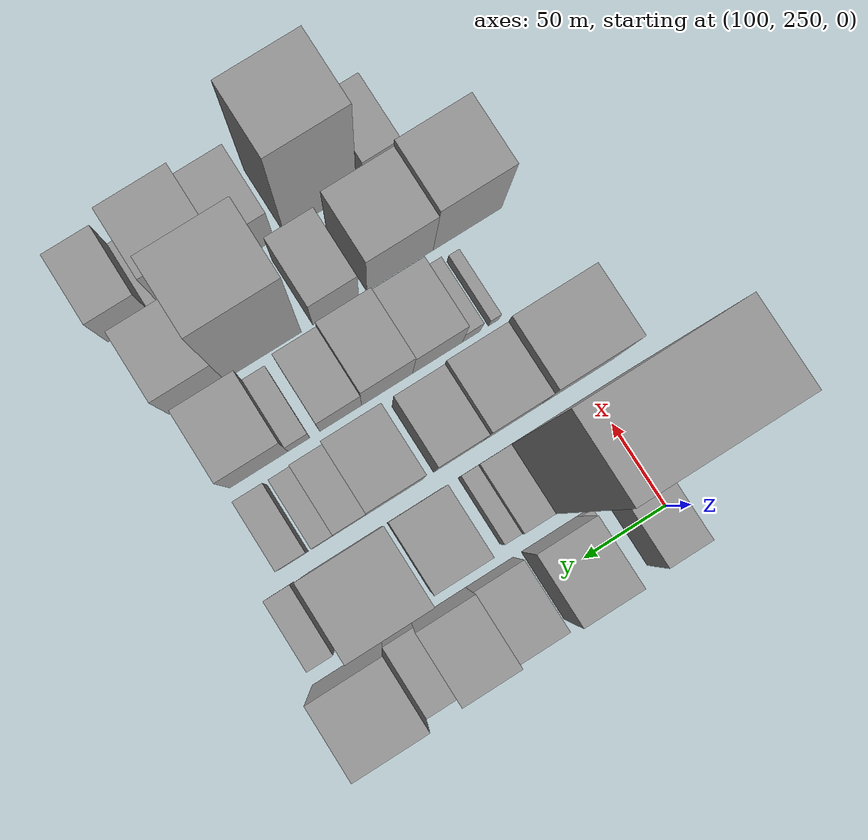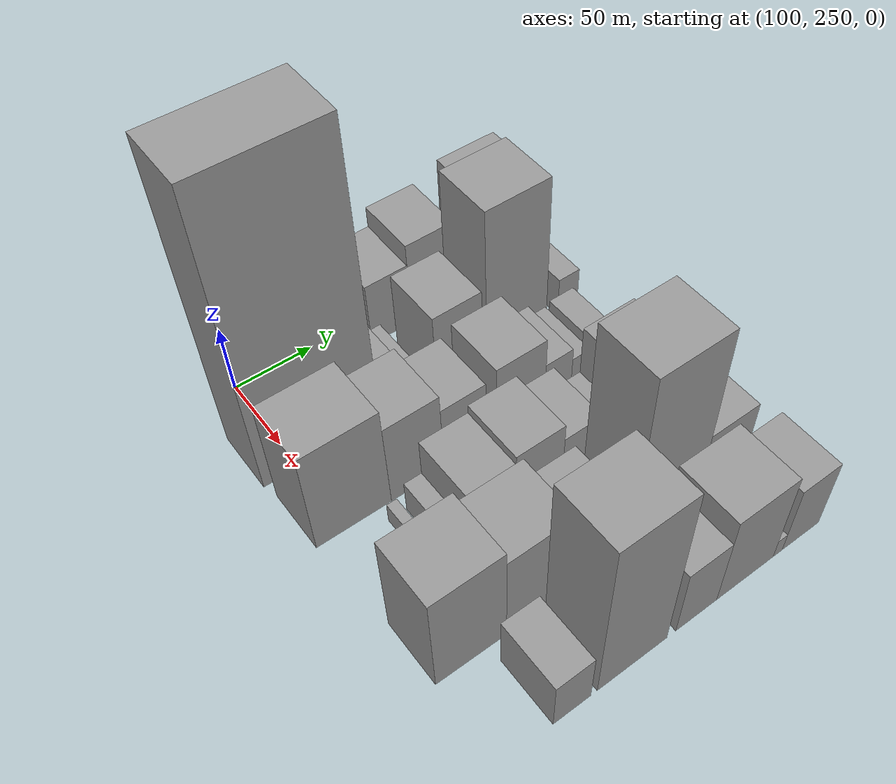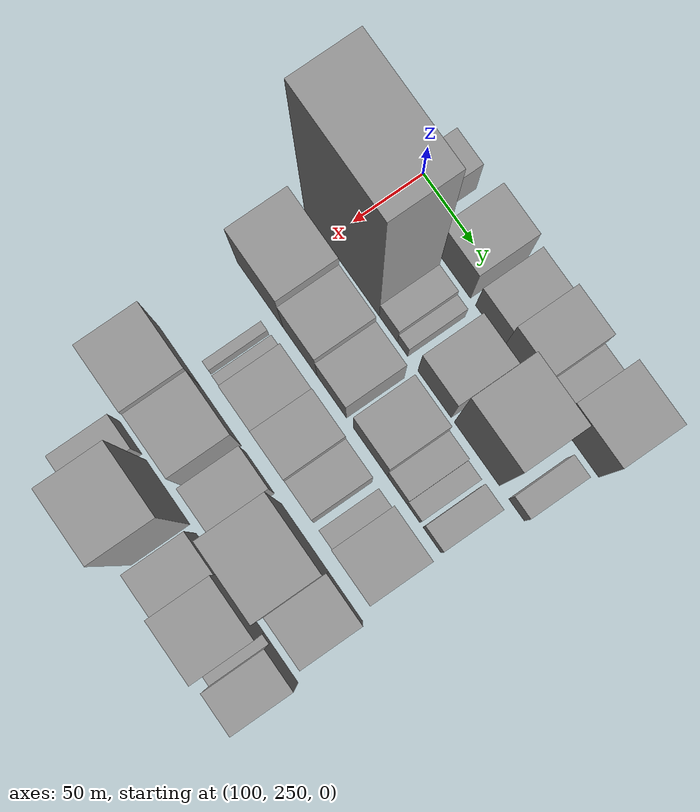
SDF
<sdf version="1.6">
 <world name="default">
  <model name="building_30">
   <static>1</static>
   <pose>100.0000 262.0798 0 0.000000 0.000000 0.000000</pose>
   <link name="link">
    <pose>0 0 24.00 0 0 0</pose>
    <collision name="collision"><geometry><box><size>40.0000 25.0170 48.0000</size></box></geometry></collision>
    <visual name="visual">
     <cast_shadows>0</cast_shadows>
     <geometry><box><size>40.0000 25.0170 48.0000</size></box></geometry>
     <material>
      <script>
       <uri>model://grey_wall/materials/scripts</uri>
       <uri>model://grey_wall/materials/textures</uri>
       <name>vrc/grey_wall</name>
      </script>
     </material>
    </visual>
   </link>
  </model>
  <model name="building_31">
   <static>1</static>
   <pose>100.0000 287.9482 0 0.000000 0.000000 0.000000</pose>
   <link name="link">
    <pose>0 0 7.50 0 0 0</pose>
    <collision name="collision"><geometry><box><size>40.0000 6.7198 15.0000</size></box></geometry></collision>
    <visual name="visual">
     <cast_shadows>0</cast_shadows>
     <geometry><box><size>40.0000 6.7198 15.0000</size></box></geometry>
     <material>
      <script>
       <uri>model://grey_wall/materials/scripts</uri>
       <uri>model://grey_wall/materials/textures</uri>
       <name>vrc/grey_wall</name>
      </script>
     </material>
    </visual>
   </link>
  </model>
  <model name="building_32">
   <static>1</static>
   <pose>100.0000 308.2810 0 0.000000 0.000000 0.000000</pose>
   <link name="link">
    <pose>0 0 30.00 0 0 0</pose>
    <collision name="collision"><geometry><box><size>40.0000 33.9458 60.0000</size></box></geometry></collision>
    <visual name="visual">
     <cast_shadows>0</cast_shadows>
     <geometry><box><size>40.0000 33.9458 60.0000</size></box></geometry>
     <material>
      <script>
       <uri>model://grey_wall/materials/scripts</uri>
       <uri>model://grey_wall/materials/textures</uri>
       <name>vrc/grey_wall</name>
      </script>
     </material>
    </visual>
   </link>
  </model>
  <model name="building_33">
   <static>1</static>
   <pose>100.0000 344.5933 0 0.000000 0.000000 0.000000</pose>
   <link name="link">
    <pose>0 0 24.00 0 0 0</pose>
    <collision name="collision"><geometry><box><size>40.0000 28.6788 48.0000</size></box></geometry></collision>
    <visual name="visual">
     <cast_shadows>0</cast_shadows>
     <geometry><box><size>40.0000 28.6788 48.0000</size></box></geometry>
     <material>
      <script>
       <uri>model://grey_wall/materials/scripts</uri>
       <uri>model://grey_wall/materials/textures</uri>
       <name>vrc/grey_wall</name>
      </script>
     </material>
    </visual>
   </link>
  </model>
  <model name="building_34">
   <static>1</static>
   <pose>100.0000 375.3645 0 0.000000 0.000000 0.000000</pose>
   <link name="link">
    <pose>0 0 31.50 0 0 0</pose>
    <collision name="collision"><geometry><box><size>40.0000 32.8637 63.0000</size></box></geometry></collision>
    <visual name="visual">
     <cast_shadows>0</cast_shadows>
     <geometry><box><size>40.0000 32.8637 63.0000</size></box></geometry>
     <material>
      <script>
       <uri>model://grey_wall/materials/scripts</uri>
       <uri>model://grey_wall/materials/textures</uri>
       <name>vrc/grey_wall</name>
      </script>
     </material>
    </visual>
   </link>
  </model>
  <model name="building_35">
   <static>1</static>
   <pose>100.0000 400.6702 0 0.000000 0.000000 0.000000</pose>
   <link name="link">
    <pose>0 0 16.50 0 0 0</pose>
    <collision name="collision"><geometry><box><size>40.0000 17.7477 33.0000</size></box></geometry></collision>
    <visual name="visual">
     <cast_shadows>0</cast_shadows>
     <geometry><box><size>40.0000 17.7477 33.0000</size></box></geometry>
     <material>
      <script>
       <uri>model://grey_wall/materials/scripts</uri>
       <uri>model://grey_wall/materials/textures</uri>
       <name>vrc/grey_wall</name>
      </script>
     </material>
    </visual>
   </link>
  </model>
  <model name="building_36">
   <static>1</static>
   <pose>100.0000 430.2554 0 0.000000 0.000000 0.000000</pose>
   <link name="link">
    <pose>0 0 36.00 0 0 0</pose>
    <collision name="collision"><geometry><box><size>40.0000 41.4226 72.0000</size></box></geometry></collision>
    <visual name="visual">
     <cast_shadows>0</cast_shadows>
     <geometry><box><size>40.0000 41.4226 72.0000</size></box></geometry>
     <material>
      <script>
       <uri>model://grey_wall/materials/scripts</uri>
       <uri>model://grey_wall/materials/textures</uri>
       <name>vrc/grey_wall</name>
      </script>
     </material>
    </visual>
   </link>
  </model>
  <model name="building_73">
   <static>1</static>
   <pose>149.0000 266.2312 0 0.000000 0.000000 0.000000</pose>
   <link name="link">
    <pose>0 0 106.50 0 0 0</pose>
    <collision name="collision"><geometry><box><size>40.0000 75.2303 213.0000</size></box></geometry></collision>
    <visual name="visual">
     <cast_shadows>0</cast_shadows>
     <geometry><box><size>40.0000 75.2303 213.0000</size></box></geometry>
     <material>
      <script>
       <uri>model://grey_wall/materials/scripts</uri>
       <uri>model://grey_wall/materials/textures</uri>
       <name>vrc/grey_wall</name>
      </script>
     </material>
    </visual>
   </link>
  </model>
  <model name="building_74">
   <static>1</static>
   <pose>149.0000 312.9829 0 0.000000 0.000000 0.000000</pose>
   <link name="link">
    <pose>0 0 16.50 0 0 0</pose>
    <collision name="collision"><geometry><box><size>40.0000 18.2730 33.0000</size></box></geometry></collision>
    <visual name="visual">
     <cast_shadows>0</cast_shadows>
     <geometry><box><size>40.0000 18.2730 33.0000</size></box></geometry>
     <material>
      <script>
       <uri>model://grey_wall/materials/scripts</uri>
       <uri>model://grey_wall/materials/textures</uri>
       <name>vrc/grey_wall</name>
      </script>
     </material>
    </visual>
   </link>
  </model>
  <model name="building_75">
   <static>1</static>
   <pose>149.0000 327.2028 0 0.000000 0.000000 0.000000</pose>
   <link name="link">
    <pose>0 0 12.00 0 0 0</pose>
    <collision name="collision"><geometry><box><size>40.0000 10.1668 24.0000</size></box></geometry></collision>
    <visual name="visual">
     <cast_shadows>0</cast_shadows>
     <geometry><box><size>40.0000 10.1668 24.0000</size></box></geometry>
     <material>
      <script>
       <uri>model://grey_wall/materials/scripts</uri>
       <uri>model://grey_wall/materials/textures</uri>
       <name>vrc/grey_wall</name>
      </script>
     </material>
    </visual>
   </link>
  </model>
  <model name="building_76">
   <static>1</static>
   <pose>149.0000 358.7865 0 0.000000 0.000000 0.000000</pose>
   <link name="link">
    <pose>0 0 28.50 0 0 0</pose>
    <collision name="collision"><geometry><box><size>40.0000 33.0005 57.0000</size></box></geometry></collision>
    <visual name="visual">
     <cast_shadows>0</cast_shadows>
     <geometry><box><size>40.0000 33.0005 57.0000</size></box></geometry>
     <material>
      <script>
       <uri>model://grey_wall/materials/scripts</uri>
       <uri>model://grey_wall/materials/textures</uri>
       <name>vrc/grey_wall</name>
      </script>
     </material>
    </visual>
   </link>
  </model>
  <model name="building_77">
   <static>1</static>
   <pose>149.0000 400.4650 0 0.000000 0.000000 0.000000</pose>
   <link name="link">
    <pose>0 0 57.00 0 0 0</pose>
    <collision name="collision"><geometry><box><size>40.0000 44.3565 114.0000</size></box></geometry></collision>
    <visual name="visual">
     <cast_shadows>0</cast_shadows>
     <geometry><box><size>40.0000 44.3565 114.0000</size></box></geometry>
     <material>
      <script>
       <uri>model://grey_wall/materials/scripts</uri>
       <uri>model://grey_wall/materials/textures</uri>
       <name>vrc/grey_wall</name>
      </script>
     </material>
    </visual>
   </link>
  </model>
  <model name="building_78">
   <static>1</static>
   <pose>149.0000 439.2201 0 0.000000 0.000000 0.000000</pose>
   <link name="link">
    <pose>0 0 15.00 0 0 0</pose>
    <collision name="collision"><geometry><box><size>40.0000 15.1538 30.0000</size></box></geometry></collision>
    <visual name="visual">
     <cast_shadows>0</cast_shadows>
     <geometry><box><size>40.0000 15.1538 30.0000</size></box></geometry>
     <material>
      <script>
       <uri>model://grey_wall/materials/scripts</uri>
       <uri>model://grey_wall/materials/textures</uri>
       <name>vrc/grey_wall</name>
      </script>
     </material>
    </visual>
   </link>
  </model>
  <model name="building_126">
   <static>1</static>
   <pose>198.0000 254.6107 0 0.000000 0.000000 0.000000</pose>
   <link name="link">
    <pose>0 0 39.00 0 0 0</pose>
    <collision name="collision"><geometry><box><size>40.0000 46.6393 78.0000</size></box></geometry></collision>
    <visual name="visual">
     <cast_shadows>0</cast_shadows>
     <geometry><box><size>40.0000 46.6393 78.0000</size></box></geometry>
     <material>
      <script>
       <uri>model://grey_wall/materials/scripts</uri>
       <uri>model://grey_wall/materials/textures</uri>
       <name>vrc/grey_wall</name>
      </script>
     </material>
    </visual>
   </link>
  </model>
  <model name="building_127">
   <static>1</static>
   <pose>198.0000 295.1061 0 0.000000 0.000000 0.000000</pose>
   <link name="link">
    <pose>0 0 31.50 0 0 0</pose>
    <collision name="collision"><geometry><box><size>40.0000 34.3516 63.0000</size></box></geometry></collision>
    <visual name="visual">
     <cast_shadows>0</cast_shadows>
     <geometry><box><size>40.0000 34.3516 63.0000</size></box></geometry>
     <material>
      <script>
       <uri>model://grey_wall/materials/scripts</uri>
       <uri>model://grey_wall/materials/textures</uri>
       <name>vrc/grey_wall</name>
      </script>
     </material>
    </visual>
   </link>
  </model>
  <model name="building_128">
   <static>1</static>
   <pose>198.0000 326.7949 0 0.000000 0.000000 0.000000</pose>
   <link name="link">
    <pose>0 0 25.50 0 0 0</pose>
    <collision name="collision"><geometry><box><size>40.0000 29.0258 51.0000</size></box></geometry></collision>
    <visual name="visual">
     <cast_shadows>0</cast_shadows>
     <geometry><box><size>40.0000 29.0258 51.0000</size></box></geometry>
     <material>
      <script>
       <uri>model://grey_wall/materials/scripts</uri>
       <uri>model://grey_wall/materials/textures</uri>
       <name>vrc/grey_wall</name>
      </script>
     </material>
    </visual>
   </link>
  </model>
  <model name="building_129">
   <static>1</static>
   <pose>198.0000 365.1813 0 0.000000 0.000000 0.000000</pose>
   <link name="link">
    <pose>0 0 28.50 0 0 0</pose>
    <collision name="collision"><geometry><box><size>40.0000 33.7472 57.0000</size></box></geometry></collision>
    <visual name="visual">
     <cast_shadows>0</cast_shadows>
     <geometry><box><size>40.0000 33.7472 57.0000</size></box></geometry>
     <material>
      <script>
       <uri>model://grey_wall/materials/scripts</uri>
       <uri>model://grey_wall/materials/textures</uri>
       <name>vrc/grey_wall</name>
      </script>
     </material>
    </visual>
   </link>
  </model>
  <model name="building_130">
   <static>1</static>
   <pose>198.0000 391.6179 0 0.000000 0.000000 0.000000</pose>
   <link name="link">
    <pose>0 0 18.00 0 0 0</pose>
    <collision name="collision"><geometry><box><size>40.0000 19.1260 36.0000</size></box></geometry></collision>
    <visual name="visual">
     <cast_shadows>0</cast_shadows>
     <geometry><box><size>40.0000 19.1260 36.0000</size></box></geometry>
     <material>
      <script>
       <uri>model://grey_wall/materials/scripts</uri>
       <uri>model://grey_wall/materials/textures</uri>
       <name>vrc/grey_wall</name>
      </script>
     </material>
    </visual>
   </link>
  </model>
  <model name="building_131">
   <static>1</static>
   <pose>198.0000 407.5493 0 0.000000 0.000000 0.000000</pose>
   <link name="link">
    <pose>0 0 13.50 0 0 0</pose>
    <collision name="collision"><geometry><box><size>40.0000 12.7368 27.0000</size></box></geometry></collision>
    <visual name="visual">
     <cast_shadows>0</cast_shadows>
     <geometry><box><size>40.0000 12.7368 27.0000</size></box></geometry>
     <material>
      <script>
       <uri>model://grey_wall/materials/scripts</uri>
       <uri>model://grey_wall/materials/textures</uri>
       <name>vrc/grey_wall</name>
      </script>
     </material>
    </visual>
   </link>
  </model>
  <model name="building_132">
   <static>1</static>
   <pose>198.0000 425.5918 0 0.000000 0.000000 0.000000</pose>
   <link name="link">
    <pose>0 0 15.00 0 0 0</pose>
    <collision name="collision"><geometry><box><size>40.0000 17.3482 30.0000</size></box></geometry></collision>
    <visual name="visual">
     <cast_shadows>0</cast_shadows>
     <geometry><box><size>40.0000 17.3482 30.0000</size></box></geometry>
     <material>
      <script>
       <uri>model://grey_wall/materials/scripts</uri>
       <uri>model://grey_wall/materials/textures</uri>
       <name>vrc/grey_wall</name>
      </script>
     </material>
    </visual>
   </link>
  </model>
  <model name="building_179">
   <static>1</static>
   <pose>247.0000 273.2107 0 0.000000 0.000000 0.000000</pose>
   <link name="link">
    <pose>0 0 7.50 0 0 0</pose>
    <collision name="collision"><geometry><box><size>40.0000 6.4503 15.0000</size></box></geometry></collision>
    <visual name="visual">
     <cast_shadows>0</cast_shadows>
     <geometry><box><size>40.0000 6.4503 15.0000</size></box></geometry>
     <material>
      <script>
       <uri>model://grey_wall/materials/scripts</uri>
       <uri>model://grey_wall/materials/textures</uri>
       <name>vrc/grey_wall</name>
      </script>
     </material>
    </visual>
   </link>
  </model>
  <model name="building_180">
   <static>1</static>
   <pose>247.0000 287.0451 0 0.000000 0.000000 0.000000</pose>
   <link name="link">
    <pose>0 0 12.00 0 0 0</pose>
    <collision name="collision"><geometry><box><size>40.0000 11.2184 24.0000</size></box></geometry></collision>
    <visual name="visual">
     <cast_shadows>0</cast_shadows>
     <geometry><box><size>40.0000 11.2184 24.0000</size></box></geometry>
     <material>
      <script>
       <uri>model://grey_wall/materials/scripts</uri>
       <uri>model://grey_wall/materials/textures</uri>
       <name>vrc/grey_wall</name>
      </script>
     </material>
    </visual>
   </link>
  </model>
  <model name="building_181">
   <static>1</static>
   <pose>247.0000 307.8679 0 0.000000 0.000000 0.000000</pose>
   <link name="link">
    <pose>0 0 25.50 0 0 0</pose>
    <collision name="collision"><geometry><box><size>40.0000 30.4273 51.0000</size></box></geometry></collision>
    <visual name="visual">
     <cast_shadows>0</cast_shadows>
     <geometry><box><size>40.0000 30.4273 51.0000</size></box></geometry>
     <material>
      <script>
       <uri>model://grey_wall/materials/scripts</uri>
       <uri>model://grey_wall/materials/textures</uri>
       <name>vrc/grey_wall</name>
      </script>
     </material>
    </visual>
   </link>
  </model>
  <model name="building_182">
   <static>1</static>
   <pose>247.0000 338.6921 0 0.000000 0.000000 0.000000</pose>
   <link name="link">
    <pose>0 0 28.50 0 0 0</pose>
    <collision name="collision"><geometry><box><size>40.0000 31.2211 57.0000</size></box></geometry></collision>
    <visual name="visual">
     <cast_shadows>0</cast_shadows>
     <geometry><box><size>40.0000 31.2211 57.0000</size></box></geometry>
     <material>
      <script>
       <uri>model://grey_wall/materials/scripts</uri>
       <uri>model://grey_wall/materials/textures</uri>
       <name>vrc/grey_wall</name>
      </script>
     </material>
    </visual>
   </link>
  </model>
  <model name="building_183">
   <static>1</static>
   <pose>247.0000 366.9429 0 0.000000 0.000000 0.000000</pose>
   <link name="link">
    <pose>0 0 22.50 0 0 0</pose>
    <collision name="collision"><geometry><box><size>40.0000 25.2806 45.0000</size></box></geometry></collision>
    <visual name="visual">
     <cast_shadows>0</cast_shadows>
     <geometry><box><size>40.0000 25.2806 45.0000</size></box></geometry>
     <material>
      <script>
       <uri>model://grey_wall/materials/scripts</uri>
       <uri>model://grey_wall/materials/textures</uri>
       <name>vrc/grey_wall</name>
      </script>
     </material>
    </visual>
   </link>
  </model>
  <model name="building_184">
   <static>1</static>
   <pose>247.0000 392.1977 0 0.000000 0.000000 0.000000</pose>
   <link name="link">
    <pose>0 0 13.50 0 0 0</pose>
    <collision name="collision"><geometry><box><size>40.0000 13.2289 27.0000</size></box></geometry></collision>
    <visual name="visual">
     <cast_shadows>0</cast_shadows>
     <geometry><box><size>40.0000 13.2289 27.0000</size></box></geometry>
     <material>
      <script>
       <uri>model://grey_wall/materials/scripts</uri>
       <uri>model://grey_wall/materials/textures</uri>
       <name>vrc/grey_wall</name>
      </script>
     </material>
    </visual>
   </link>
  </model>
  <model name="building_185">
   <static>1</static>
   <pose>247.0000 416.4103 0 0.000000 0.000000 0.000000</pose>
   <link name="link">
    <pose>0 0 31.50 0 0 0</pose>
    <collision name="collision"><geometry><box><size>40.0000 35.1963 63.0000</size></box></geometry></collision>
    <visual name="visual">
     <cast_shadows>0</cast_shadows>
     <geometry><box><size>40.0000 35.1963 63.0000</size></box></geometry>
     <material>
      <script>
       <uri>model://grey_wall/materials/scripts</uri>
       <uri>model://grey_wall/materials/textures</uri>
       <name>vrc/grey_wall</name>
      </script>
     </material>
    </visual>
   </link>
  </model>
  <model name="building_231">
   <static>1</static>
   <pose>296.0000 258.1542 0 0.000000 0.000000 0.000000</pose>
   <link name="link">
    <pose>0 0 39.00 0 0 0</pose>
    <collision name="collision"><geometry><box><size>40.0000 42.4990 78.0000</size></box></geometry></collision>
    <visual name="visual">
     <cast_shadows>0</cast_shadows>
     <geometry><box><size>40.0000 42.4990 78.0000</size></box></geometry>
     <material>
      <script>
       <uri>model://grey_wall/materials/scripts</uri>
       <uri>model://grey_wall/materials/textures</uri>
       <name>vrc/grey_wall</name>
      </script>
     </material>
    </visual>
   </link>
  </model>
  <model name="building_232">
   <static>1</static>
   <pose>296.0000 299.7932 0 0.000000 0.000000 0.000000</pose>
   <link name="link">
    <pose>0 0 34.50 0 0 0</pose>
    <collision name="collision"><geometry><box><size>40.0000 40.7790 69.0000</size></box></geometry></collision>
    <visual name="visual">
     <cast_shadows>0</cast_shadows>
     <geometry><box><size>40.0000 40.7790 69.0000</size></box></geometry>
     <material>
      <script>
       <uri>model://grey_wall/materials/scripts</uri>
       <uri>model://grey_wall/materials/textures</uri>
       <name>vrc/grey_wall</name>
      </script>
     </material>
    </visual>
   </link>
  </model>
  <model name="building_233">
   <static>1</static>
   <pose>296.0000 339.2226 0 0.000000 0.000000 0.000000</pose>
   <link name="link">
    <pose>0 0 25.50 0 0 0</pose>
    <collision name="collision"><geometry><box><size>40.0000 28.0798 51.0000</size></box></geometry></collision>
    <visual name="visual">
     <cast_shadows>0</cast_shadows>
     <geometry><box><size>40.0000 28.0798 51.0000</size></box></geometry>
     <material>
      <script>
       <uri>model://grey_wall/materials/scripts</uri>
       <uri>model://grey_wall/materials/textures</uri>
       <name>vrc/grey_wall</name>
      </script>
     </material>
    </visual>
   </link>
  </model>
  <model name="building_234">
   <static>1</static>
   <pose>296.0000 383.6970 0 0.000000 0.000000 0.000000</pose>
   <link name="link">
    <pose>0 0 69.00 0 0 0</pose>
    <collision name="collision"><geometry><box><size>40.0000 46.8689 138.0000</size></box></geometry></collision>
    <visual name="visual">
     <cast_shadows>0</cast_shadows>
     <geometry><box><size>40.0000 46.8689 138.0000</size></box></geometry>
     <material>
      <script>
       <uri>model://grey_wall/materials/scripts</uri>
       <uri>model://grey_wall/materials/textures</uri>
       <name>vrc/grey_wall</name>
      </script>
     </material>
    </visual>
   </link>
  </model>
  <model name="building_235">
   <static>1</static>
   <pose>296.0000 423.8439 0 0.000000 0.000000 0.000000</pose>
   <link name="link">
    <pose>0 0 28.50 0 0 0</pose>
    <collision name="collision"><geometry><box><size>40.0000 33.4250 57.0000</size></box></geometry></collision>
    <visual name="visual">
     <cast_shadows>0</cast_shadows>
     <geometry><box><size>40.0000 33.4250 57.0000</size></box></geometry>
     <material>
      <script>
       <uri>model://grey_wall/materials/scripts</uri>
       <uri>model://grey_wall/materials/textures</uri>
       <name>vrc/grey_wall</name>
      </script>
     </material>
    </visual>
   </link>
  </model>
  <model name="building_281">
   <static>1</static>
   <pose>345.0000 280.3487 0 0.000000 0.000000 0.000000</pose>
   <link name="link">
    <pose>0 0 19.50 0 0 0</pose>
    <collision name="collision"><geometry><box><size>40.0000 22.8983 39.0000</size></box></geometry></collision>
    <visual name="visual">
     <cast_shadows>0</cast_shadows>
     <geometry><box><size>40.0000 22.8983 39.0000</size></box></geometry>
     <material>
      <script>
       <uri>model://grey_wall/materials/scripts</uri>
       <uri>model://grey_wall/materials/textures</uri>
       <name>vrc/grey_wall</name>
      </script>
     </material>
    </visual>
   </link>
  </model>
  <model name="building_282">
   <static>1</static>
   <pose>345.0000 318.0507 0 0.000000 0.000000 0.000000</pose>
   <link name="link">
    <pose>0 0 64.50 0 0 0</pose>
    <collision name="collision"><geometry><box><size>40.0000 44.5057 129.0000</size></box></geometry></collision>
    <visual name="visual">
     <cast_shadows>0</cast_shadows>
     <geometry><box><size>40.0000 44.5057 129.0000</size></box></geometry>
     <material>
      <script>
       <uri>model://grey_wall/materials/scripts</uri>
       <uri>model://grey_wall/materials/textures</uri>
       <name>vrc/grey_wall</name>
      </script>
     </material>
    </visual>
   </link>
  </model>
  <model name="building_283">
   <static>1</static>
   <pose>345.0000 360.1427 0 0.000000 0.000000 0.000000</pose>
   <link name="link">
    <pose>0 0 27.00 0 0 0</pose>
    <collision name="collision"><geometry><box><size>40.0000 27.6783 54.0000</size></box></geometry></collision>
    <visual name="visual">
     <cast_shadows>0</cast_shadows>
     <geometry><box><size>40.0000 27.6783 54.0000</size></box></geometry>
     <material>
      <script>
       <uri>model://grey_wall/materials/scripts</uri>
       <uri>model://grey_wall/materials/textures</uri>
       <name>vrc/grey_wall</name>
      </script>
     </material>
    </visual>
   </link>
  </model>
  <model name="building_284">
   <static>1</static>
   <pose>345.0000 394.0191 0 0.000000 0.000000 0.000000</pose>
   <link name="link">
    <pose>0 0 36.00 0 0 0</pose>
    <collision name="collision"><geometry><box><size>40.0000 40.0744 72.0000</size></box></geometry></collision>
    <visual name="visual">
     <cast_shadows>0</cast_shadows>
     <geometry><box><size>40.0000 40.0744 72.0000</size></box></geometry>
     <material>
      <script>
       <uri>model://grey_wall/materials/scripts</uri>
       <uri>model://grey_wall/materials/textures</uri>
       <name>vrc/grey_wall</name>
      </script>
     </material>
    </visual>
   </link>
  </model>
  <model name="building_285">
   <static>1</static>
   <pose>345.0000 417.3613 0 0.000000 0.000000 0.000000</pose>
   <link name="link">
    <pose>0 0 7.50 0 0 0</pose>
    <collision name="collision"><geometry><box><size>40.0000 6.6099 15.0000</size></box></geometry></collision>
    <visual name="visual">
     <cast_shadows>0</cast_shadows>
     <geometry><box><size>40.0000 6.6099 15.0000</size></box></geometry>
     <material>
      <script>
       <uri>model://grey_wall/materials/scripts</uri>
       <uri>model://grey_wall/materials/textures</uri>
       <name>vrc/grey_wall</name>
      </script>
     </material>
    </visual>
   </link>
  </model>
  <model name="building_286">
   <static>1</static>
   <pose>345.0000 434.2152 0 0.000000 0.000000 0.000000</pose>
   <link name="link">
    <pose>0 0 27.00 0 0 0</pose>
    <collision name="collision"><geometry><box><size>40.0000 27.0979 54.0000</size></box></geometry></collision>
    <visual name="visual">
     <cast_shadows>0</cast_shadows>
     <geometry><box><size>40.0000 27.0979 54.0000</size></box></geometry>
     <material>
      <script>
       <uri>model://grey_wall/materials/scripts</uri>
       <uri>model://grey_wall/materials/textures</uri>
       <name>vrc/grey_wall</name>
      </script>
     </material>
    </visual>
   </link>
  </model>
 </world>
</sdf>
